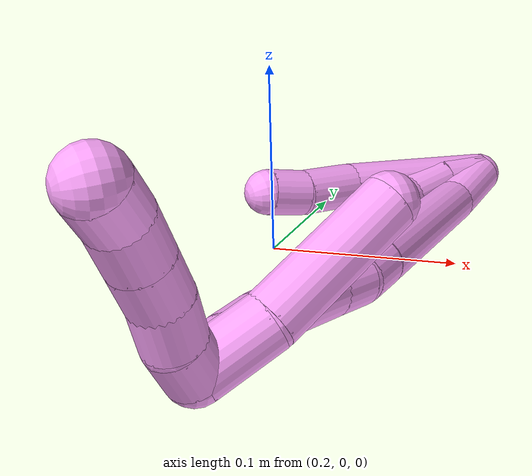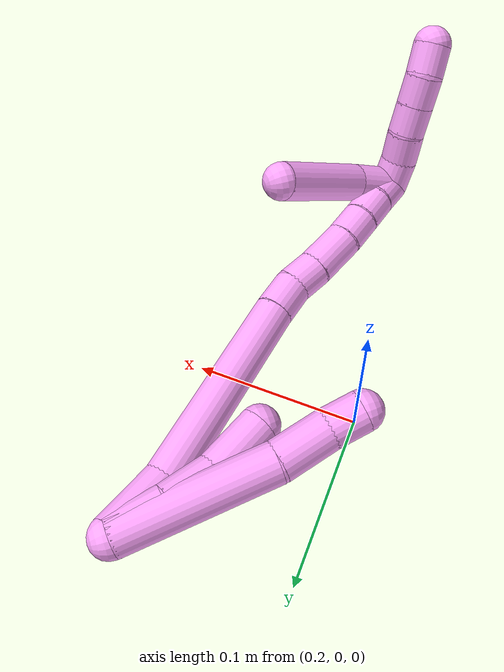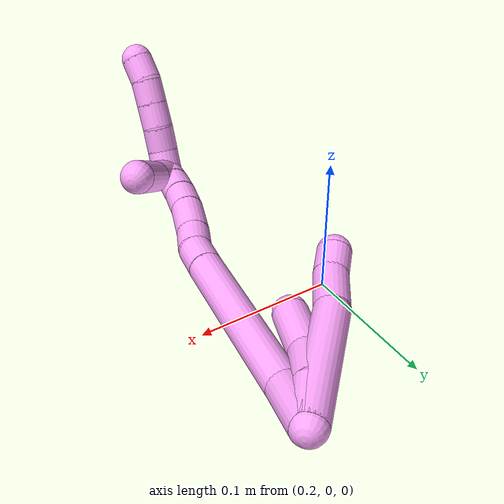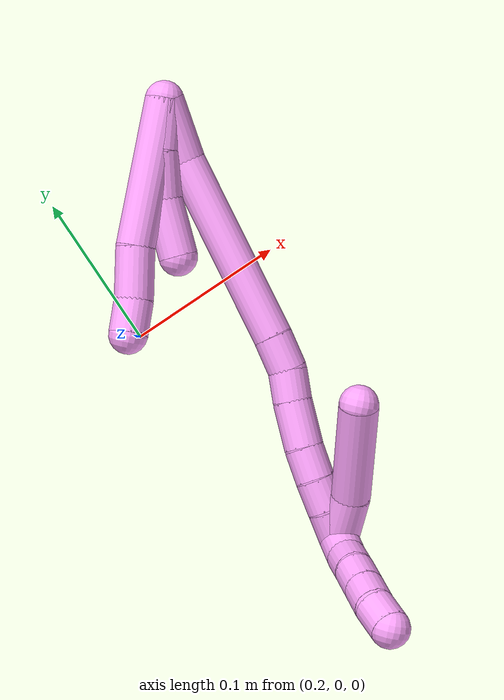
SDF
<sdf version="1.7">
 <world name="default">
  <model name="4">
   <static>0</static>
   <link name="4">
    <collision name="collision-cylinder-e_1_2_8">
     <pose>-0.00677 -0.000169 -0.04676 3.13798 -0.143783 -3.09139</pose>
     <geometry><cylinder><radius>0.0125</radius><length>0.094496</length></cylinder></geometry>
     <surface>
      <friction><ode><mu>1.16</mu><mu2>1.16</mu2><slip1>0</slip1><slip2>0</slip2></ode></friction>
      <contact><ode><kp>1e+06</kp><kd>1</kd><max_vel>0</max_vel><min_depth>0.001</min_depth></ode></contact>
     </surface>
    </collision>
    <visual name="visual-cylinder-e_1_2_8">
     <pose>-0.00677 -0.000169 -0.04676 3.13798 -0.143783 -3.09139</pose>
     <geometry><cylinder><radius>0.0125</radius><length>0.094496</length></cylinder></geometry>
     <material><ambient>1 0.65098 0.996078 1</ambient></material>
    </visual>
    <collision name="collision-cylinder-e_2_8_9">
     <pose>-0.016078 -0.003141 -0.109851 2.97159 -0.151956 -1.45834</pose>
     <geometry><cylinder><radius>0.0125</radius><length>0.033525</length></cylinder></geometry>
     <surface>
      <friction><ode><mu>1.16</mu><mu2>1.16</mu2><slip1>0</slip1><slip2>0</slip2></ode></friction>
      <contact><ode><kp>1e+06</kp><kd>1</kd><max_vel>0</max_vel><min_depth>0.001</min_depth></ode></contact>
     </surface>
    </collision>
    <visual name="visual-cylinder-e_2_8_9">
     <pose>-0.016078 -0.003141 -0.109851 2.97159 -0.151956 -1.45834</pose>
     <geometry><cylinder><radius>0.0125</radius><length>0.033525</length></cylinder></geometry>
     <material><ambient>1 0.65098 0.996078 1</ambient></material>
    </visual>
    <collision name="collision-cylinder-e_3_9_6">
     <pose>-0.021408 -0.006216 -0.136807 3.11607 -0.256986 -2.94472</pose>
     <geometry><cylinder><radius>0.0125</radius><length>0.021979</length></cylinder></geometry>
     <surface>
      <friction><ode><mu>1.16</mu><mu2>1.16</mu2><slip1>0</slip1><slip2>0</slip2></ode></friction>
      <contact><ode><kp>1e+06</kp><kd>1</kd><max_vel>0</max_vel><min_depth>0.001</min_depth></ode></contact>
     </surface>
    </collision>
    <visual name="visual-cylinder-e_3_9_6">
     <pose>-0.021408 -0.006216 -0.136807 3.11607 -0.256986 -2.94472</pose>
     <geometry><cylinder><radius>0.0125</radius><length>0.021979</length></cylinder></geometry>
     <material><ambient>1 0.65098 0.996078 1</ambient></material>
    </visual>
    <collision name="collision-cylinder-e_1_2_10">
     <pose>-0.001965 -0.001755 -0.015754 3.03063 -0.123363 -1.67678</pose>
     <geometry><cylinder><radius>0.0125</radius><length>0.031946</length></cylinder></geometry>
     <surface>
      <friction><ode><mu>1.16</mu><mu2>1.16</mu2><slip1>0</slip1><slip2>0</slip2></ode></friction>
      <contact><ode><kp>1e+06</kp><kd>1</kd><max_vel>0</max_vel><min_depth>0.001</min_depth></ode></contact>
     </surface>
    </collision>
    <visual name="visual-cylinder-e_1_2_10">
     <pose>-0.001965 -0.001755 -0.015754 3.03063 -0.123363 -1.67678</pose>
     <geometry><cylinder><radius>0.0125</radius><length>0.031946</length></cylinder></geometry>
     <material><ambient>1 0.65098 0.996078 1</ambient></material>
    </visual>
    <collision name="collision-cylinder-e_2_10_11">
     <pose>-0.003659 -0.007735 -0.046328 2.86389 0.017672 0.12629</pose>
     <geometry><cylinder><radius>0.0125</radius><length>0.030826</length></cylinder></geometry>
     <surface>
      <friction><ode><mu>1.16</mu><mu2>1.16</mu2><slip1>0</slip1><slip2>0</slip2></ode></friction>
      <contact><ode><kp>1e+06</kp><kd>1</kd><max_vel>0</max_vel><min_depth>0.001</min_depth></ode></contact>
     </surface>
    </collision>
    <visual name="visual-cylinder-e_2_10_11">
     <pose>-0.003659 -0.007735 -0.046328 2.86389 0.017672 0.12629</pose>
     <geometry><cylinder><radius>0.0125</radius><length>0.030826</length></cylinder></geometry>
     <material><ambient>1 0.65098 0.996078 1</ambient></material>
    </visual>
    <collision name="collision-cylinder-e_3_11_5">
     <pose>-0.005774 -0.020279 -0.077628 2.67412 -0.128646 -0.528428</pose>
     <geometry><cylinder><radius>0.0125</radius><length>0.037228</length></cylinder></geometry>
     <surface>
      <friction><ode><mu>1.16</mu><mu2>1.16</mu2><slip1>0</slip1><slip2>0</slip2></ode></friction>
      <contact><ode><kp>1e+06</kp><kd>1</kd><max_vel>0</max_vel><min_depth>0.001</min_depth></ode></contact>
     </surface>
    </collision>
    <visual name="visual-cylinder-e_3_11_5">
     <pose>-0.005774 -0.020279 -0.077628 2.67412 -0.128646 -0.528428</pose>
     <geometry><cylinder><radius>0.0125</radius><length>0.037228</length></cylinder></geometry>
     <material><ambient>1 0.65098 0.996078 1</ambient></material>
    </visual>
    <collision name="collision-cylinder-e_1_2_12">
     <pose>0.001176 -0.010826 -0.017362 2.58404 0.057425 0.200008</pose>
     <geometry><cylinder><radius>0.0125</radius><length>0.040989</length></cylinder></geometry>
     <surface>
      <friction><ode><mu>1.16</mu><mu2>1.16</mu2><slip1>0</slip1><slip2>0</slip2></ode></friction>
      <contact><ode><kp>1e+06</kp><kd>1</kd><max_vel>0</max_vel><min_depth>0.001</min_depth></ode></contact>
     </surface>
    </collision>
    <visual name="visual-cylinder-e_1_2_12">
     <pose>0.001176 -0.010826 -0.017362 2.58404 0.057425 0.200008</pose>
     <geometry><cylinder><radius>0.0125</radius><length>0.040989</length></cylinder></geometry>
     <material><ambient>1 0.65098 0.996078 1</ambient></material>
    </visual>
    <collision name="collision-cylinder-e_2_12_13">
     <pose>-0.008073 -0.059311 -0.082704 2.47614 -0.169286 -0.481522</pose>
     <geometry><cylinder><radius>0.0125</radius><length>0.123757</length></cylinder></geometry>
     <surface>
      <friction><ode><mu>1.16</mu><mu2>1.16</mu2><slip1>0</slip1><slip2>0</slip2></ode></friction>
      <contact><ode><kp>1e+06</kp><kd>1</kd><max_vel>0</max_vel><min_depth>0.001</min_depth></ode></contact>
     </surface>
    </collision>
    <visual name="visual-cylinder-e_2_12_13">
     <pose>-0.008073 -0.059311 -0.082704 2.47614 -0.169286 -0.481522</pose>
     <geometry><cylinder><radius>0.0125</radius><length>0.123757</length></cylinder></geometry>
     <material><ambient>1 0.65098 0.996078 1</ambient></material>
    </visual>
    <collision name="collision-cylinder-e_3_13_14">
     <pose>-0.020002 -0.10361 -0.139977 2.52113 -0.130906 -0.403361</pose>
     <geometry><cylinder><radius>0.0125</radius><length>0.02304</length></cylinder></geometry>
     <surface>
      <friction><ode><mu>1.16</mu><mu2>1.16</mu2><slip1>0</slip1><slip2>0</slip2></ode></friction>
      <contact><ode><kp>1e+06</kp><kd>1</kd><max_vel>0</max_vel><min_depth>0.001</min_depth></ode></contact>
     </surface>
    </collision>
    <visual name="visual-cylinder-e_3_13_14">
     <pose>-0.020002 -0.10361 -0.139977 2.52113 -0.130906 -0.403361</pose>
     <geometry><cylinder><radius>0.0125</radius><length>0.02304</length></cylinder></geometry>
     <material><ambient>1 0.65098 0.996078 1</ambient></material>
    </visual>
    <collision name="collision-cylinder-e_4_14_15">
     <pose>-0.023104 -0.113748 -0.158596 2.78282 -0.159124 -0.828487</pose>
     <geometry><cylinder><radius>0.0125</radius><length>0.020175</length></cylinder></geometry>
     <surface>
      <friction><ode><mu>1.16</mu><mu2>1.16</mu2><slip1>0</slip1><slip2>0</slip2></ode></friction>
      <contact><ode><kp>1e+06</kp><kd>1</kd><max_vel>0</max_vel><min_depth>0.001</min_depth></ode></contact>
     </surface>
    </collision>
    <visual name="visual-cylinder-e_4_14_15">
     <pose>-0.023104 -0.113748 -0.158596 2.78282 -0.159124 -0.828487</pose>
     <geometry><cylinder><radius>0.0125</radius><length>0.020175</length></cylinder></geometry>
     <material><ambient>1 0.65098 0.996078 1</ambient></material>
    </visual>
    <collision name="collision-cylinder-e_5_15_16">
     <pose>-0.027818 -0.123527 -0.181264 2.70156 -0.208226 -0.874184</pose>
     <geometry><cylinder><radius>0.0125</radius><length>0.030144</length></cylinder></geometry>
     <surface>
      <friction><ode><mu>1.16</mu><mu2>1.16</mu2><slip1>0</slip1><slip2>0</slip2></ode></friction>
      <contact><ode><kp>1e+06</kp><kd>1</kd><max_vel>0</max_vel><min_depth>0.001</min_depth></ode></contact>
     </surface>
    </collision>
    <visual name="visual-cylinder-e_5_15_16">
     <pose>-0.027818 -0.123527 -0.181264 2.70156 -0.208226 -0.874184</pose>
     <geometry><cylinder><radius>0.0125</radius><length>0.030144</length></cylinder></geometry>
     <material><ambient>1 0.65098 0.996078 1</ambient></material>
    </visual>
    <collision name="collision-cylinder-e_6_16_17">
     <pose>-0.032825 -0.13509 -0.203426 2.60204 -0.181935 -0.637295</pose>
     <geometry><cylinder><radius>0.0125</radius><length>0.020906</length></cylinder></geometry>
     <surface>
      <friction><ode><mu>1.16</mu><mu2>1.16</mu2><slip1>0</slip1><slip2>0</slip2></ode></friction>
      <contact><ode><kp>1e+06</kp><kd>1</kd><max_vel>0</max_vel><min_depth>0.001</min_depth></ode></contact>
     </surface>
    </collision>
    <visual name="visual-cylinder-e_6_16_17">
     <pose>-0.032825 -0.13509 -0.203426 2.60204 -0.181935 -0.637295</pose>
     <geometry><cylinder><radius>0.0125</radius><length>0.020906</length></cylinder></geometry>
     <material><ambient>1 0.65098 0.996078 1</ambient></material>
    </visual>
    <collision name="collision-cylinder-e_7_17_18">
     <pose>-0.035827 -0.146017 -0.220768 2.55653 -0.108205 -0.355829</pose>
     <geometry><cylinder><radius>0.0125</radius><length>0.020565</length></cylinder></geometry>
     <surface>
      <friction><ode><mu>1.16</mu><mu2>1.16</mu2><slip1>0</slip1><slip2>0</slip2></ode></friction>
      <contact><ode><kp>1e+06</kp><kd>1</kd><max_vel>0</max_vel><min_depth>0.001</min_depth></ode></contact>
     </surface>
    </collision>
    <visual name="visual-cylinder-e_7_17_18">
     <pose>-0.035827 -0.146017 -0.220768 2.55653 -0.108205 -0.355829</pose>
     <geometry><cylinder><radius>0.0125</radius><length>0.020565</length></cylinder></geometry>
     <material><ambient>1 0.65098 0.996078 1</ambient></material>
    </visual>
    <collision name="collision-cylinder-e_8_18_1">
     <pose>-0.036869 -0.157409 -0.23773 2.5438 0.006664 0.021626</pose>
     <geometry><cylinder><radius>0.0125</radius><length>0.020423</length></cylinder></geometry>
     <surface>
      <friction><ode><mu>1.16</mu><mu2>1.16</mu2><slip1>0</slip1><slip2>0</slip2></ode></friction>
      <contact><ode><kp>1e+06</kp><kd>1</kd><max_vel>0</max_vel><min_depth>0.001</min_depth></ode></contact>
     </surface>
    </collision>
    <visual name="visual-cylinder-e_8_18_1">
     <pose>-0.036869 -0.157409 -0.23773 2.5438 0.006664 0.021626</pose>
     <geometry><cylinder><radius>0.0125</radius><length>0.020423</length></cylinder></geometry>
     <material><ambient>1 0.65098 0.996078 1</ambient></material>
    </visual>
    <collision name="collision-cylinder-e_1_1_19">
     <pose>-0.042814 -0.162667 -0.231128 -0.032524 -0.380063 0.006257</pose>
     <geometry><cylinder><radius>0.0125</radius><length>0.032414</length></cylinder></geometry>
     <surface>
      <friction><ode><mu>1.16</mu><mu2>1.16</mu2><slip1>0</slip1><slip2>0</slip2></ode></friction>
      <contact><ode><kp>1e+06</kp><kd>1</kd><max_vel>0</max_vel><min_depth>0.001</min_depth></ode></contact>
     </surface>
    </collision>
    <visual name="visual-cylinder-e_1_1_19">
     <pose>-0.042814 -0.162667 -0.231128 -0.032524 -0.380063 0.006257</pose>
     <geometry><cylinder><radius>0.0125</radius><length>0.032414</length></cylinder></geometry>
     <material><ambient>1 0.65098 0.996078 1</ambient></material>
    </visual>
    <collision name="collision-cylinder-e_2_19_4">
     <pose>-0.063067 -0.155388 -0.186201 -0.223399 -0.434986 0.049565</pose>
     <geometry><cylinder><radius>0.0125</radius><length>0.067586</length></cylinder></geometry>
     <surface>
      <friction><ode><mu>1.16</mu><mu2>1.16</mu2><slip1>0</slip1><slip2>0</slip2></ode></friction>
      <contact><ode><kp>1e+06</kp><kd>1</kd><max_vel>0</max_vel><min_depth>0.001</min_depth></ode></contact>
     </surface>
    </collision>
    <visual name="visual-cylinder-e_2_19_4">
     <pose>-0.063067 -0.155388 -0.186201 -0.223399 -0.434986 0.049565</pose>
     <geometry><cylinder><radius>0.0125</radius><length>0.067586</length></cylinder></geometry>
     <material><ambient>1 0.65098 0.996078 1</ambient></material>
    </visual>
    <collision name="collision-cylinder-e_1_1_20">
     <pose>-0.045846 -0.165114 -0.24996 2.66474 -1.1302 -2.40952</pose>
     <geometry><cylinder><radius>0.0125</radius><length>0.02</length></cylinder></geometry>
     <surface>
      <friction><ode><mu>1.16</mu><mu2>1.16</mu2><slip1>0</slip1><slip2>0</slip2></ode></friction>
      <contact><ode><kp>1e+06</kp><kd>1</kd><max_vel>0</max_vel><min_depth>0.001</min_depth></ode></contact>
     </surface>
    </collision>
    <visual name="visual-cylinder-e_1_1_20">
     <pose>-0.045846 -0.165114 -0.24996 2.66474 -1.1302 -2.40952</pose>
     <geometry><cylinder><radius>0.0125</radius><length>0.02</length></cylinder></geometry>
     <material><ambient>1 0.65098 0.996078 1</ambient></material>
    </visual>
    <collision name="collision-cylinder-e_2_20_21">
     <pose>-0.064626 -0.168307 -0.255676 2.57127 -1.33974 -2.43262</pose>
     <geometry><cylinder><radius>0.0125</radius><length>0.02</length></cylinder></geometry>
     <surface>
      <friction><ode><mu>1.16</mu><mu2>1.16</mu2><slip1>0</slip1><slip2>0</slip2></ode></friction>
      <contact><ode><kp>1e+06</kp><kd>1</kd><max_vel>0</max_vel><min_depth>0.001</min_depth></ode></contact>
     </surface>
    </collision>
    <visual name="visual-cylinder-e_2_20_21">
     <pose>-0.064626 -0.168307 -0.255676 2.57127 -1.33974 -2.43262</pose>
     <geometry><cylinder><radius>0.0125</radius><length>0.02</length></cylinder></geometry>
     <material><ambient>1 0.65098 0.996078 1</ambient></material>
    </visual>
    <collision name="collision-cylinder-e_3_21_22">
     <pose>-0.083612 -0.171685 -0.260735 2.54176 -1.1817 -2.27764</pose>
     <geometry><cylinder><radius>0.0125</radius><length>0.02</length></cylinder></geometry>
     <surface>
      <friction><ode><mu>1.16</mu><mu2>1.16</mu2><slip1>0</slip1><slip2>0</slip2></ode></friction>
      <contact><ode><kp>1e+06</kp><kd>1</kd><max_vel>0</max_vel><min_depth>0.001</min_depth></ode></contact>
     </surface>
    </collision>
    <visual name="visual-cylinder-e_3_21_22">
     <pose>-0.083612 -0.171685 -0.260735 2.54176 -1.1817 -2.27764</pose>
     <geometry><cylinder><radius>0.0125</radius><length>0.02</length></cylinder></geometry>
     <material><ambient>1 0.65098 0.996078 1</ambient></material>
    </visual>
    <collision name="collision-cylinder-e_4_22_23">
     <pose>-0.102105 -0.175974 -0.26703 2.54534 -1.17848 -2.27982</pose>
     <geometry><cylinder><radius>0.0125</radius><length>0.02</length></cylinder></geometry>
     <surface>
      <friction><ode><mu>1.16</mu><mu2>1.16</mu2><slip1>0</slip1><slip2>0</slip2></ode></friction>
      <contact><ode><kp>1e+06</kp><kd>1</kd><max_vel>0</max_vel><min_depth>0.001</min_depth></ode></contact>
     </surface>
    </collision>
    <visual name="visual-cylinder-e_4_22_23">
     <pose>-0.102105 -0.175974 -0.26703 2.54534 -1.17848 -2.27982</pose>
     <geometry><cylinder><radius>0.0125</radius><length>0.02</length></cylinder></geometry>
     <material><ambient>1 0.65098 0.996078 1</ambient></material>
    </visual>
    <collision name="collision-cylinder-e_5_23_3">
     <pose>-0.119545 -0.182267 -0.274141 2.33152 -0.961296 -1.76528</pose>
     <geometry><cylinder><radius>0.0125</radius><length>0.02</length></cylinder></geometry>
     <surface>
      <friction><ode><mu>1.16</mu><mu2>1.16</mu2><slip1>0</slip1><slip2>0</slip2></ode></friction>
      <contact><ode><kp>1e+06</kp><kd>1</kd><max_vel>0</max_vel><min_depth>0.001</min_depth></ode></contact>
     </surface>
    </collision>
    <visual name="visual-cylinder-e_5_23_3">
     <pose>-0.119545 -0.182267 -0.274141 2.33152 -0.961296 -1.76528</pose>
     <geometry><cylinder><radius>0.0125</radius><length>0.02</length></cylinder></geometry>
     <material><ambient>1 0.65098 0.996078 1</ambient></material>
    </visual>
    <collision name="collision-sphere-3">
     <pose>-0.127744 -0.186414 -0.278087 0 -0 0</pose>
     <geometry><sphere><radius>0.0125</radius></sphere></geometry>
     <surface>
      <friction><ode><mu>1.16</mu><mu2>1.16</mu2><slip1>0</slip1><slip2>0</slip2></ode></friction>
      <contact><ode><kp>1e+06</kp><kd>1</kd><max_vel>0</max_vel><min_depth>0.001</min_depth></ode></contact>
     </surface>
    </collision>
    <visual name="visual-sphere-3">
     <pose>-0.127744 -0.186414 -0.278087 0 -0 0</pose>
     <geometry><sphere><radius>0.0125</radius></sphere></geometry>
     <material><ambient>1 0.65098 0.996078 1</ambient></material>
    </visual>
    <collision name="collision-sphere-23">
     <pose>-0.111345 -0.178121 -0.270194 0 -0 0</pose>
     <geometry><sphere><radius>0.0125</radius></sphere></geometry>
     <surface>
      <friction><ode><mu>1.16</mu><mu2>1.16</mu2><slip1>0</slip1><slip2>0</slip2></ode></friction>
      <contact><ode><kp>1e+06</kp><kd>1</kd><max_vel>0</max_vel><min_depth>0.001</min_depth></ode></contact>
     </surface>
    </collision>
    <visual name="visual-sphere-23">
     <pose>-0.111345 -0.178121 -0.270194 0 -0 0</pose>
     <geometry><sphere><radius>0.0125</radius></sphere></geometry>
     <material><ambient>1 0.65098 0.996078 1</ambient></material>
    </visual>
    <collision name="collision-sphere-22">
     <pose>-0.092865 -0.173827 -0.263867 0 -0 0</pose>
     <geometry><sphere><radius>0.0125</radius></sphere></geometry>
     <surface>
      <friction><ode><mu>1.16</mu><mu2>1.16</mu2><slip1>0</slip1><slip2>0</slip2></ode></friction>
      <contact><ode><kp>1e+06</kp><kd>1</kd><max_vel>0</max_vel><min_depth>0.001</min_depth></ode></contact>
     </surface>
    </collision>
    <visual name="visual-sphere-22">
     <pose>-0.092865 -0.173827 -0.263867 0 -0 0</pose>
     <geometry><sphere><radius>0.0125</radius></sphere></geometry>
     <material><ambient>1 0.65098 0.996078 1</ambient></material>
    </visual>
    <collision name="collision-sphere-21">
     <pose>-0.07436 -0.169544 -0.257604 0 -0 0</pose>
     <geometry><sphere><radius>0.0125</radius></sphere></geometry>
     <surface>
      <friction><ode><mu>1.16</mu><mu2>1.16</mu2><slip1>0</slip1><slip2>0</slip2></ode></friction>
      <contact><ode><kp>1e+06</kp><kd>1</kd><max_vel>0</max_vel><min_depth>0.001</min_depth></ode></contact>
     </surface>
    </collision>
    <visual name="visual-sphere-21">
     <pose>-0.07436 -0.169544 -0.257604 0 -0 0</pose>
     <geometry><sphere><radius>0.0125</radius></sphere></geometry>
     <material><ambient>1 0.65098 0.996078 1</ambient></material>
    </visual>
    <collision name="collision-sphere-20">
     <pose>-0.054891 -0.167071 -0.253749 0 -0 0</pose>
     <geometry><sphere><radius>0.0125</radius></sphere></geometry>
     <surface>
      <friction><ode><mu>1.16</mu><mu2>1.16</mu2><slip1>0</slip1><slip2>0</slip2></ode></friction>
      <contact><ode><kp>1e+06</kp><kd>1</kd><max_vel>0</max_vel><min_depth>0.001</min_depth></ode></contact>
     </surface>
    </collision>
    <visual name="visual-sphere-20">
     <pose>-0.054891 -0.167071 -0.253749 0 -0 0</pose>
     <geometry><sphere><radius>0.0125</radius></sphere></geometry>
     <material><ambient>1 0.65098 0.996078 1</ambient></material>
    </visual>
    <collision name="collision-sphere-4">
     <pose>-0.077307 -0.148598 -0.156317 0 -0 0</pose>
     <geometry><sphere><radius>0.0125</radius></sphere></geometry>
     <surface>
      <friction><ode><mu>1.16</mu><mu2>1.16</mu2><slip1>0</slip1><slip2>0</slip2></ode></friction>
      <contact><ode><kp>1e+06</kp><kd>1</kd><max_vel>0</max_vel><min_depth>0.001</min_depth></ode></contact>
     </surface>
    </collision>
    <visual name="visual-sphere-4">
     <pose>-0.077307 -0.148598 -0.156317 0 -0 0</pose>
     <geometry><sphere><radius>0.0125</radius></sphere></geometry>
     <material><ambient>1 0.65098 0.996078 1</ambient></material>
    </visual>
    <collision name="collision-sphere-11">
     <pose>-0.003386 -0.01196 -0.061148 0 -0 0</pose>
     <geometry><sphere><radius>0.0125</radius></sphere></geometry>
     <surface>
      <friction><ode><mu>1.16</mu><mu2>1.16</mu2><slip1>0</slip1><slip2>0</slip2></ode></friction>
      <contact><ode><kp>1e+06</kp><kd>1</kd><max_vel>0</max_vel><min_depth>0.001</min_depth></ode></contact>
     </surface>
    </collision>
    <visual name="visual-sphere-11">
     <pose>-0.003386 -0.01196 -0.061148 0 -0 0</pose>
     <geometry><sphere><radius>0.0125</radius></sphere></geometry>
     <material><ambient>1 0.65098 0.996078 1</ambient></material>
    </visual>
    <collision name="collision-sphere-10">
     <pose>-0.003931 -0.003511 -0.031508 0 -0 0</pose>
     <geometry><sphere><radius>0.0125</radius></sphere></geometry>
     <surface>
      <friction><ode><mu>1.16</mu><mu2>1.16</mu2><slip1>0</slip1><slip2>0</slip2></ode></friction>
      <contact><ode><kp>1e+06</kp><kd>1</kd><max_vel>0</max_vel><min_depth>0.001</min_depth></ode></contact>
     </surface>
    </collision>
    <visual name="visual-sphere-10">
     <pose>-0.003931 -0.003511 -0.031508 0 -0 0</pose>
     <geometry><sphere><radius>0.0125</radius></sphere></geometry>
     <material><ambient>1 0.65098 0.996078 1</ambient></material>
    </visual>
    <collision name="collision-sphere-6">
     <pose>-0.024201 -0.006487 -0.147432 0 -0 0</pose>
     <geometry><sphere><radius>0.0125</radius></sphere></geometry>
     <surface>
      <friction><ode><mu>1.16</mu><mu2>1.16</mu2><slip1>0</slip1><slip2>0</slip2></ode></friction>
      <contact><ode><kp>1e+06</kp><kd>1</kd><max_vel>0</max_vel><min_depth>0.001</min_depth></ode></contact>
     </surface>
    </collision>
    <visual name="visual-sphere-6">
     <pose>-0.024201 -0.006487 -0.147432 0 -0 0</pose>
     <geometry><sphere><radius>0.0125</radius></sphere></geometry>
     <material><ambient>1 0.65098 0.996078 1</ambient></material>
    </visual>
    <collision name="collision-sphere-9">
     <pose>-0.018615 -0.005945 -0.126182 0 -0 0</pose>
     <geometry><sphere><radius>0.0125</radius></sphere></geometry>
     <surface>
      <friction><ode><mu>1.16</mu><mu2>1.16</mu2><slip1>0</slip1><slip2>0</slip2></ode></friction>
      <contact><ode><kp>1e+06</kp><kd>1</kd><max_vel>0</max_vel><min_depth>0.001</min_depth></ode></contact>
     </surface>
    </collision>
    <visual name="visual-sphere-9">
     <pose>-0.018615 -0.005945 -0.126182 0 -0 0</pose>
     <geometry><sphere><radius>0.0125</radius></sphere></geometry>
     <material><ambient>1 0.65098 0.996078 1</ambient></material>
    </visual>
    <collision name="collision-sphere-2">
     <geometry><sphere><radius>0.0125</radius></sphere></geometry>
     <surface>
      <friction><ode><mu>1.16</mu><mu2>1.16</mu2><slip1>0</slip1><slip2>0</slip2></ode></friction>
      <contact><ode><kp>1e+06</kp><kd>1</kd><max_vel>0</max_vel><min_depth>0.001</min_depth></ode></contact>
     </surface>
    </collision>
    <visual name="visual-sphere-2">
     <geometry><sphere><radius>0.0125</radius></sphere></geometry>
     <material><ambient>1 0.65098 0.996078 1</ambient></material>
    </visual>
    <collision name="collision-sphere-19">
     <pose>-0.048826 -0.162177 -0.216085 0 -0 0</pose>
     <geometry><sphere><radius>0.0125</radius></sphere></geometry>
     <surface>
      <friction><ode><mu>1.16</mu><mu2>1.16</mu2><slip1>0</slip1><slip2>0</slip2></ode></friction>
      <contact><ode><kp>1e+06</kp><kd>1</kd><max_vel>0</max_vel><min_depth>0.001</min_depth></ode></contact>
     </surface>
    </collision>
    <visual name="visual-sphere-19">
     <pose>-0.048826 -0.162177 -0.216085 0 -0 0</pose>
     <geometry><sphere><radius>0.0125</radius></sphere></geometry>
     <material><ambient>1 0.65098 0.996078 1</ambient></material>
    </visual>
    <collision name="collision-sphere-8">
     <pose>-0.01354 -0.000338 -0.09352 0 -0 0</pose>
     <geometry><sphere><radius>0.0125</radius></sphere></geometry>
     <surface>
      <friction><ode><mu>1.16</mu><mu2>1.16</mu2><slip1>0</slip1><slip2>0</slip2></ode></friction>
      <contact><ode><kp>1e+06</kp><kd>1</kd><max_vel>0</max_vel><min_depth>0.001</min_depth></ode></contact>
     </surface>
    </collision>
    <visual name="visual-sphere-8">
     <pose>-0.01354 -0.000338 -0.09352 0 -0 0</pose>
     <geometry><sphere><radius>0.0125</radius></sphere></geometry>
     <material><ambient>1 0.65098 0.996078 1</ambient></material>
    </visual>
    <collision name="collision-sphere-5">
     <pose>-0.008162 -0.028598 -0.094108 0 -0 0</pose>
     <geometry><sphere><radius>0.0125</radius></sphere></geometry>
     <surface>
      <friction><ode><mu>1.16</mu><mu2>1.16</mu2><slip1>0</slip1><slip2>0</slip2></ode></friction>
      <contact><ode><kp>1e+06</kp><kd>1</kd><max_vel>0</max_vel><min_depth>0.001</min_depth></ode></contact>
     </surface>
    </collision>
    <visual name="visual-sphere-5">
     <pose>-0.008162 -0.028598 -0.094108 0 -0 0</pose>
     <geometry><sphere><radius>0.0125</radius></sphere></geometry>
     <material><ambient>1 0.65098 0.996078 1</ambient></material>
    </visual>
    <collision name="collision-sphere-12">
     <pose>0.002352 -0.021652 -0.034724 0 -0 0</pose>
     <geometry><sphere><radius>0.0125</radius></sphere></geometry>
     <surface>
      <friction><ode><mu>1.16</mu><mu2>1.16</mu2><slip1>0</slip1><slip2>0</slip2></ode></friction>
      <contact><ode><kp>1e+06</kp><kd>1</kd><max_vel>0</max_vel><min_depth>0.001</min_depth></ode></contact>
     </surface>
    </collision>
    <visual name="visual-sphere-12">
     <pose>0.002352 -0.021652 -0.034724 0 -0 0</pose>
     <geometry><sphere><radius>0.0125</radius></sphere></geometry>
     <material><ambient>1 0.65098 0.996078 1</ambient></material>
    </visual>
    <collision name="collision-sphere-13">
     <pose>-0.018498 -0.096969 -0.130685 0 -0 0</pose>
     <geometry><sphere><radius>0.0125</radius></sphere></geometry>
     <surface>
      <friction><ode><mu>1.16</mu><mu2>1.16</mu2><slip1>0</slip1><slip2>0</slip2></ode></friction>
      <contact><ode><kp>1e+06</kp><kd>1</kd><max_vel>0</max_vel><min_depth>0.001</min_depth></ode></contact>
     </surface>
    </collision>
    <visual name="visual-sphere-13">
     <pose>-0.018498 -0.096969 -0.130685 0 -0 0</pose>
     <geometry><sphere><radius>0.0125</radius></sphere></geometry>
     <material><ambient>1 0.65098 0.996078 1</ambient></material>
    </visual>
    <collision name="collision-sphere-14">
     <pose>-0.021506 -0.110251 -0.14927 0 -0 0</pose>
     <geometry><sphere><radius>0.0125</radius></sphere></geometry>
     <surface>
      <friction><ode><mu>1.16</mu><mu2>1.16</mu2><slip1>0</slip1><slip2>0</slip2></ode></friction>
      <contact><ode><kp>1e+06</kp><kd>1</kd><max_vel>0</max_vel><min_depth>0.001</min_depth></ode></contact>
     </surface>
    </collision>
    <visual name="visual-sphere-14">
     <pose>-0.021506 -0.110251 -0.14927 0 -0 0</pose>
     <geometry><sphere><radius>0.0125</radius></sphere></geometry>
     <material><ambient>1 0.65098 0.996078 1</ambient></material>
    </visual>
    <collision name="collision-sphere-15">
     <pose>-0.024702 -0.117245 -0.167922 0 -0 0</pose>
     <geometry><sphere><radius>0.0125</radius></sphere></geometry>
     <surface>
      <friction><ode><mu>1.16</mu><mu2>1.16</mu2><slip1>0</slip1><slip2>0</slip2></ode></friction>
      <contact><ode><kp>1e+06</kp><kd>1</kd><max_vel>0</max_vel><min_depth>0.001</min_depth></ode></contact>
     </surface>
    </collision>
    <visual name="visual-sphere-15">
     <pose>-0.024702 -0.117245 -0.167922 0 -0 0</pose>
     <geometry><sphere><radius>0.0125</radius></sphere></geometry>
     <material><ambient>1 0.65098 0.996078 1</ambient></material>
    </visual>
    <collision name="collision-sphere-16">
     <pose>-0.030934 -0.129808 -0.194606 0 -0 0</pose>
     <geometry><sphere><radius>0.0125</radius></sphere></geometry>
     <surface>
      <friction><ode><mu>1.16</mu><mu2>1.16</mu2><slip1>0</slip1><slip2>0</slip2></ode></friction>
      <contact><ode><kp>1e+06</kp><kd>1</kd><max_vel>0</max_vel><min_depth>0.001</min_depth></ode></contact>
     </surface>
    </collision>
    <visual name="visual-sphere-16">
     <pose>-0.030934 -0.129808 -0.194606 0 -0 0</pose>
     <geometry><sphere><radius>0.0125</radius></sphere></geometry>
     <material><ambient>1 0.65098 0.996078 1</ambient></material>
    </visual>
    <collision name="collision-sphere-17">
     <pose>-0.034717 -0.140371 -0.212246 0 -0 0</pose>
     <geometry><sphere><radius>0.0125</radius></sphere></geometry>
     <surface>
      <friction><ode><mu>1.16</mu><mu2>1.16</mu2><slip1>0</slip1><slip2>0</slip2></ode></friction>
      <contact><ode><kp>1e+06</kp><kd>1</kd><max_vel>0</max_vel><min_depth>0.001</min_depth></ode></contact>
     </surface>
    </collision>
    <visual name="visual-sphere-17">
     <pose>-0.034717 -0.140371 -0.212246 0 -0 0</pose>
     <geometry><sphere><radius>0.0125</radius></sphere></geometry>
     <material><ambient>1 0.65098 0.996078 1</ambient></material>
    </visual>
    <collision name="collision-sphere-18">
     <pose>-0.036937 -0.151662 -0.22929 0 -0 0</pose>
     <geometry><sphere><radius>0.0125</radius></sphere></geometry>
     <surface>
      <friction><ode><mu>1.16</mu><mu2>1.16</mu2><slip1>0</slip1><slip2>0</slip2></ode></friction>
      <contact><ode><kp>1e+06</kp><kd>1</kd><max_vel>0</max_vel><min_depth>0.001</min_depth></ode></contact>
     </surface>
    </collision>
    <visual name="visual-sphere-18">
     <pose>-0.036937 -0.151662 -0.22929 0 -0 0</pose>
     <geometry><sphere><radius>0.0125</radius></sphere></geometry>
     <material><ambient>1 0.65098 0.996078 1</ambient></material>
    </visual>
    <collision name="collision-sphere-1">
     <pose>-0.036801 -0.163156 -0.246171 0 -0 0</pose>
     <geometry><sphere><radius>0.0125</radius></sphere></geometry>
     <surface>
      <friction><ode><mu>1.16</mu><mu2>1.16</mu2><slip1>0</slip1><slip2>0</slip2></ode></friction>
      <contact><ode><kp>1e+06</kp><kd>1</kd><max_vel>0</max_vel><min_depth>0.001</min_depth></ode></contact>
     </surface>
    </collision>
    <visual name="visual-sphere-1">
     <pose>-0.036801 -0.163156 -0.246171 0 -0 0</pose>
     <geometry><sphere><radius>0.0125</radius></sphere></geometry>
     <material><ambient>1 0.65098 0.996078 1</ambient></material>
    </visual>
    <inertial>
     <pose>-0.027863 -0.079441 -0.131521 0 -0 0</pose>
     <mass>0.75</mass>
     <inertia><ixx>1e-05</ixx><ixy>0</ixy><ixz>0</ixz><iyy>-0.000123</iyy><iyz>0</iyz><izz>0.000137</izz></inertia>
    </inertial>
   </link>
   <pose>0.296205 0.114684 0.020877 0.986409 1.40512 1.75621</pose>
  </model>
 </world>
</sdf>
